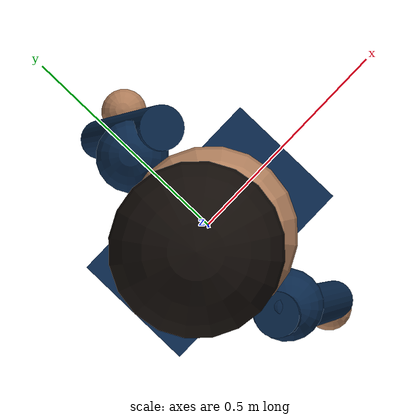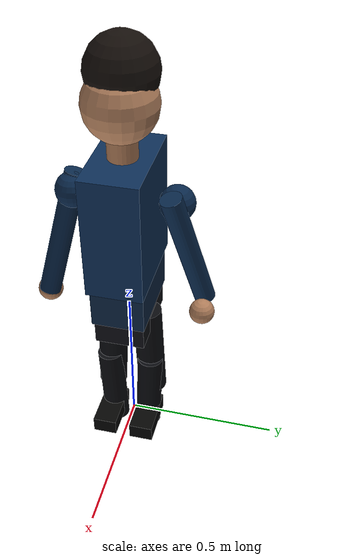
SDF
<?xml version="1.0" ?>
<sdf version="1.10">
  <model name="textured_person">
    <static>false</static>
    <self_collide>false</self_collide>
    <link name="visual_link">
      <gravity>false</gravity>
      <kinematic>true</kinematic>
      <!-- A lightweight collision envelope makes the moving model visible to
           Gazebo ray sensors without adding articulated-body simulation. -->
      <collision name="lidar_collision">
        <pose>0 0 0.65 0 0 0</pose>
        <geometry><box><size>0.34 0.30 1.30</size></box></geometry>
      </collision>
      <visual name="head"><pose>0 0 1.204 0 0 0</pose><geometry><sphere><radius>0.112</radius></sphere></geometry><material><diffuse>0.72 0.52 0.38 1</diffuse></material></visual>
      <visual name="hair"><pose>-0.025 0 1.288 0 0 0</pose><geometry><sphere><radius>0.108</radius></sphere></geometry><material><diffuse>0.08 0.055 0.04 1</diffuse></material></visual>
      <visual name="neck"><pose>0 0 1.043 0 0 0</pose><geometry><cylinder><radius>0.046</radius><length>0.13</length></cylinder></geometry><material><diffuse>0.68 0.48 0.34 1</diffuse></material></visual>
      <visual name="chest"><pose>0 0 0.84 0 0 0</pose><geometry><box><size>0.31 0.18 0.40</size></box></geometry><material><diffuse>0.05 0.18 0.34 1</diffuse><pbr><metal><albedo_map>materials/textures/person_albedo.png</albedo_map><roughness>0.8</roughness></metal></pbr></material></visual>
      <visual name="abdomen_fill"><pose>0 0 0.63 0 0 0</pose><geometry><box><size>0.27 0.17 0.25</size></box></geometry><material><diffuse>0.045 0.14 0.26 1</diffuse></material></visual>
      <visual name="pelvis"><pose>0 0 0.49 0 0 0</pose><geometry><box><size>0.25 0.16 0.13</size></box></geometry><material><diffuse>0.05 0.055 0.075 1</diffuse></material></visual>
      <visual name="left_shoulder"><pose>0 0.16 0.91 0 0 0</pose><geometry><sphere><radius>0.055</radius></sphere></geometry><material><diffuse>0.04 0.16 0.30 1</diffuse></material></visual>
      <visual name="right_shoulder"><pose>0 -0.16 0.91 0 0 0</pose><geometry><sphere><radius>0.055</radius></sphere></geometry><material><diffuse>0.04 0.16 0.30 1</diffuse></material></visual>
      <visual name="left_arm"><pose>0.02 0.20 0.76 0.22 0.20 0</pose><geometry><cylinder><radius>0.034</radius><length>0.42</length></cylinder></geometry><material><diffuse>0.04 0.16 0.30 1</diffuse></material></visual>
      <visual name="right_arm"><pose>0.02 -0.20 0.76 -0.22 -0.20 0</pose><geometry><cylinder><radius>0.034</radius><length>0.42</length></cylinder></geometry><material><diffuse>0.04 0.16 0.30 1</diffuse></material></visual>
      <visual name="left_hand"><pose>0.045 0.25 0.55 0 0 0</pose><geometry><sphere><radius>0.040</radius></sphere></geometry><material><diffuse>0.70 0.50 0.36 1</diffuse></material></visual>
      <visual name="right_hand"><pose>0.045 -0.25 0.55 0 0 0</pose><geometry><sphere><radius>0.040</radius></sphere></geometry><material><diffuse>0.70 0.50 0.36 1</diffuse></material></visual>
      <visual name="left_upper_leg"><pose>0 0.065 0.31 0.04 0 0</pose><geometry><cylinder><radius>0.048</radius><length>0.34</length></cylinder></geometry><material><diffuse>0.035 0.04 0.055 1</diffuse></material></visual>
      <visual name="right_upper_leg"><pose>0 -0.065 0.31 -0.04 0 0</pose><geometry><cylinder><radius>0.048</radius><length>0.34</length></cylinder></geometry><material><diffuse>0.035 0.04 0.055 1</diffuse></material></visual>
      <visual name="left_lower_leg"><pose>0.02 0.065 0.13 -0.04 0 0</pose><geometry><cylinder><radius>0.043</radius><length>0.30</length></cylinder></geometry><material><diffuse>0.035 0.04 0.055 1</diffuse></material></visual>
      <visual name="right_lower_leg"><pose>0.02 -0.065 0.13 0.04 0 0</pose><geometry><cylinder><radius>0.043</radius><length>0.30</length></cylinder></geometry><material><diffuse>0.035 0.04 0.055 1</diffuse></material></visual>
      <visual name="left_shoe"><pose>0.065 0.065 0.035 0 0 0</pose><geometry><box><size>0.17 0.08 0.055</size></box></geometry><material><diffuse>0.015 0.015 0.014 1</diffuse></material></visual>
      <visual name="right_shoe"><pose>0.065 -0.065 0.035 0 0 0</pose><geometry><box><size>0.17 0.08 0.055</size></box></geometry><material><diffuse>0.015 0.015 0.014 1</diffuse></material></visual>
    </link>
  </model>
</sdf>
